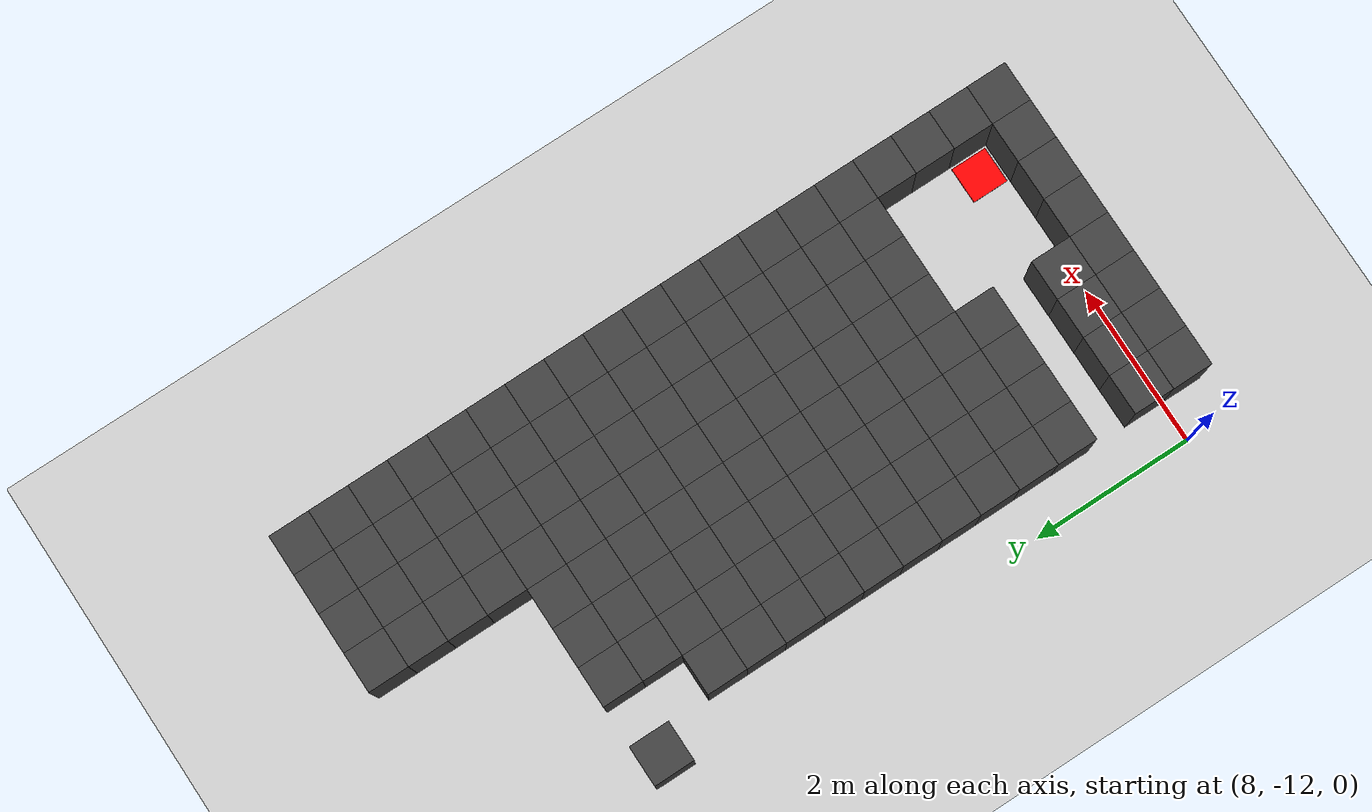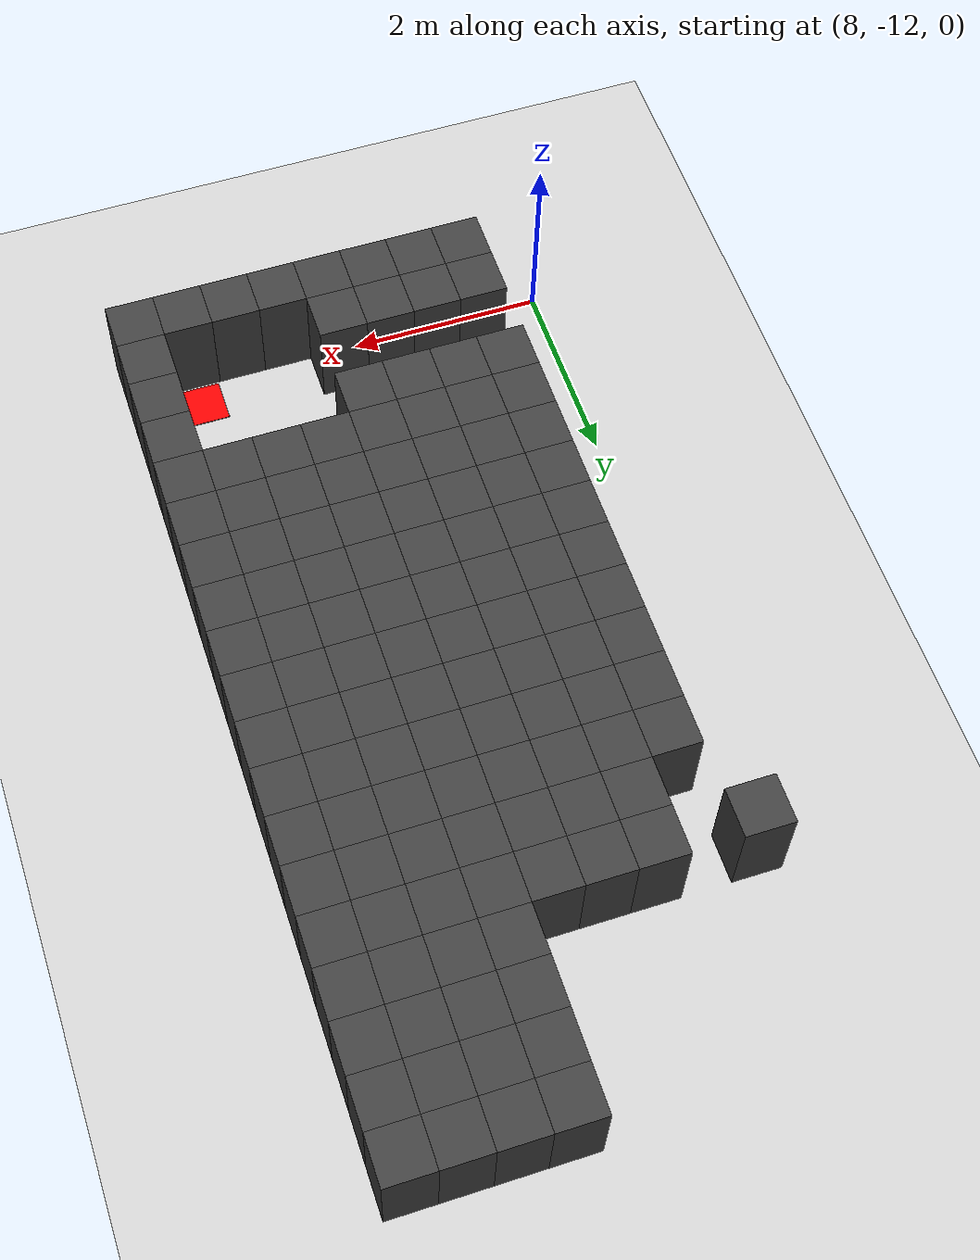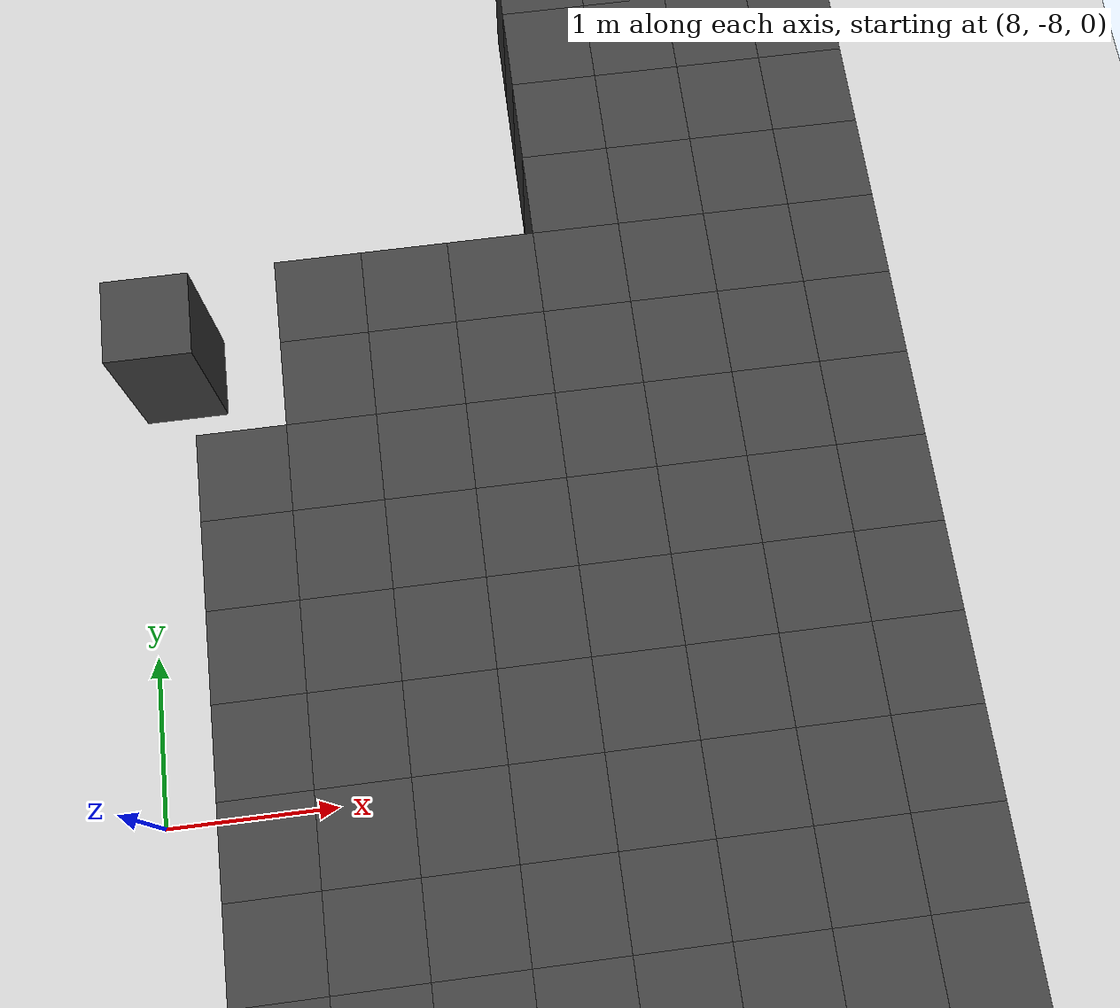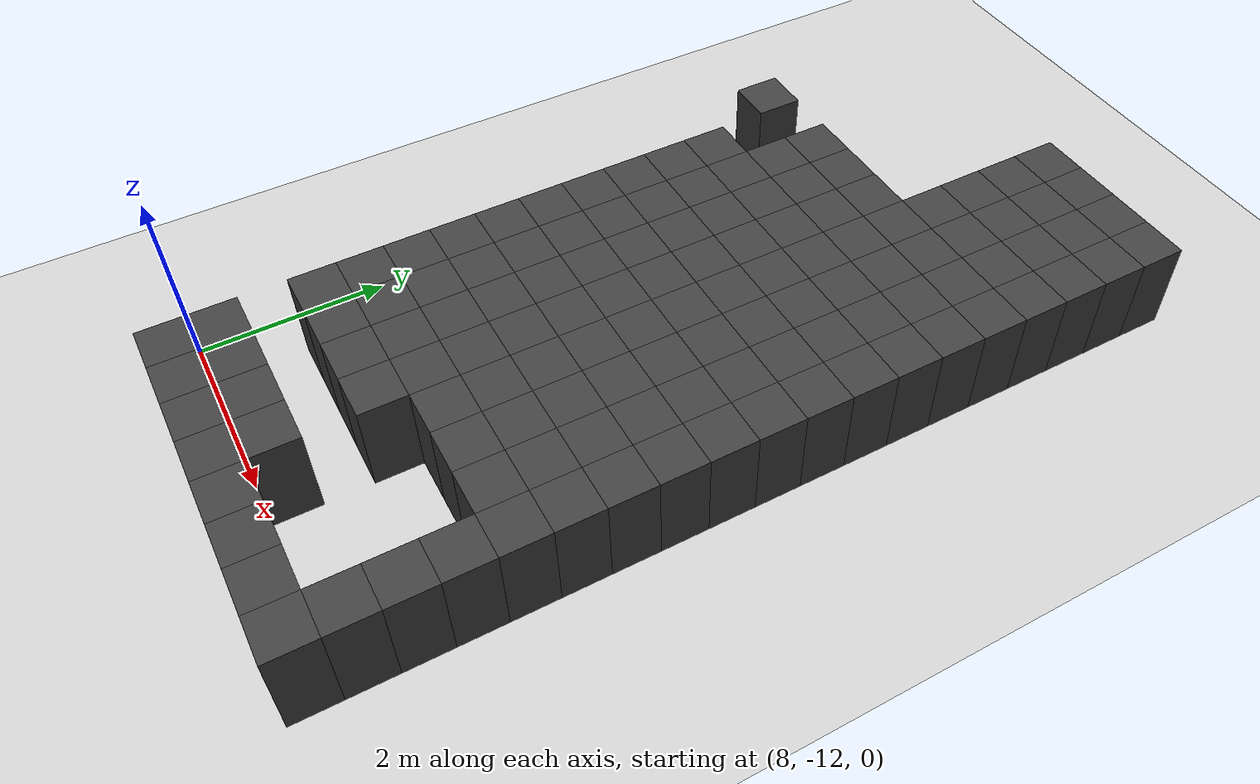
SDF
<sdf version="1.7">
 <world name="map_13994">
  <model name="ground_plane">
   <static>true</static>
   <link name="link">
    <collision name="collision">
     <geometry><plane><normal>0 0 1</normal><size>200 200</size></plane></geometry>
    </collision>
    <visual name="visual">
     <geometry><plane><normal>0 0 1</normal><size>200 200</size></plane></geometry>
     <material><ambient>0.8 0.8 0.8 1</ambient><diffuse>0.8 0.8 0.8 1</diffuse></material>
    </visual>
   </link>
  </model>
  <model name="maze_environment">
   <static>true</static>
   <link name="wall_1053">
    <pose>10.750 -3.250 0.500 0 0 0</pose>
    <collision name="col"><geometry><box><size>0.5 0.5 1.0</size></box></geometry></collision>
    <visual name="vis">
     <geometry><box><size>0.5 0.5 1.0</size></box></geometry>
     <material><ambient>0.15 0.15 0.15 1</ambient><diffuse>0.25 0.25 0.25 1</diffuse></material>
    </visual>
   </link>
   <link name="wall_1054">
    <pose>11.250 -3.250 0.500 0 0 0</pose>
    <collision name="col"><geometry><box><size>0.5 0.5 1.0</size></box></geometry></collision>
    <visual name="vis">
     <geometry><box><size>0.5 0.5 1.0</size></box></geometry>
     <material><ambient>0.15 0.15 0.15 1</ambient><diffuse>0.25 0.25 0.25 1</diffuse></material>
    </visual>
   </link>
   <link name="wall_1055">
    <pose>11.750 -3.250 0.500 0 0 0</pose>
    <collision name="col"><geometry><box><size>0.5 0.5 1.0</size></box></geometry></collision>
    <visual name="vis">
     <geometry><box><size>0.5 0.5 1.0</size></box></geometry>
     <material><ambient>0.15 0.15 0.15 1</ambient><diffuse>0.25 0.25 0.25 1</diffuse></material>
    </visual>
   </link>
   <link name="wall_1056">
    <pose>12.250 -3.250 0.500 0 0 0</pose>
    <collision name="col"><geometry><box><size>0.5 0.5 1.0</size></box></geometry></collision>
    <visual name="vis">
     <geometry><box><size>0.5 0.5 1.0</size></box></geometry>
     <material><ambient>0.15 0.15 0.15 1</ambient><diffuse>0.25 0.25 0.25 1</diffuse></material>
    </visual>
   </link>
   <link name="wall_1088">
    <pose>10.750 -3.750 0.500 0 0 0</pose>
    <collision name="col"><geometry><box><size>0.5 0.5 1.0</size></box></geometry></collision>
    <visual name="vis">
     <geometry><box><size>0.5 0.5 1.0</size></box></geometry>
     <material><ambient>0.15 0.15 0.15 1</ambient><diffuse>0.25 0.25 0.25 1</diffuse></material>
    </visual>
   </link>
   <link name="wall_1089">
    <pose>11.250 -3.750 0.500 0 0 0</pose>
    <collision name="col"><geometry><box><size>0.5 0.5 1.0</size></box></geometry></collision>
    <visual name="vis">
     <geometry><box><size>0.5 0.5 1.0</size></box></geometry>
     <material><ambient>0.15 0.15 0.15 1</ambient><diffuse>0.25 0.25 0.25 1</diffuse></material>
    </visual>
   </link>
   <link name="wall_1090">
    <pose>11.750 -3.750 0.500 0 0 0</pose>
    <collision name="col"><geometry><box><size>0.5 0.5 1.0</size></box></geometry></collision>
    <visual name="vis">
     <geometry><box><size>0.5 0.5 1.0</size></box></geometry>
     <material><ambient>0.15 0.15 0.15 1</ambient><diffuse>0.25 0.25 0.25 1</diffuse></material>
    </visual>
   </link>
   <link name="wall_1091">
    <pose>12.250 -3.750 0.500 0 0 0</pose>
    <collision name="col"><geometry><box><size>0.5 0.5 1.0</size></box></geometry></collision>
    <visual name="vis">
     <geometry><box><size>0.5 0.5 1.0</size></box></geometry>
     <material><ambient>0.15 0.15 0.15 1</ambient><diffuse>0.25 0.25 0.25 1</diffuse></material>
    </visual>
   </link>
   <link name="wall_1123">
    <pose>10.750 -4.250 0.500 0 0 0</pose>
    <collision name="col"><geometry><box><size>0.5 0.5 1.0</size></box></geometry></collision>
    <visual name="vis">
     <geometry><box><size>0.5 0.5 1.0</size></box></geometry>
     <material><ambient>0.15 0.15 0.15 1</ambient><diffuse>0.25 0.25 0.25 1</diffuse></material>
    </visual>
   </link>
   <link name="wall_1124">
    <pose>11.250 -4.250 0.500 0 0 0</pose>
    <collision name="col"><geometry><box><size>0.5 0.5 1.0</size></box></geometry></collision>
    <visual name="vis">
     <geometry><box><size>0.5 0.5 1.0</size></box></geometry>
     <material><ambient>0.15 0.15 0.15 1</ambient><diffuse>0.25 0.25 0.25 1</diffuse></material>
    </visual>
   </link>
   <link name="wall_1125">
    <pose>11.750 -4.250 0.500 0 0 0</pose>
    <collision name="col"><geometry><box><size>0.5 0.5 1.0</size></box></geometry></collision>
    <visual name="vis">
     <geometry><box><size>0.5 0.5 1.0</size></box></geometry>
     <material><ambient>0.15 0.15 0.15 1</ambient><diffuse>0.25 0.25 0.25 1</diffuse></material>
    </visual>
   </link>
   <link name="wall_1126">
    <pose>12.250 -4.250 0.500 0 0 0</pose>
    <collision name="col"><geometry><box><size>0.5 0.5 1.0</size></box></geometry></collision>
    <visual name="vis">
     <geometry><box><size>0.5 0.5 1.0</size></box></geometry>
     <material><ambient>0.15 0.15 0.15 1</ambient><diffuse>0.25 0.25 0.25 1</diffuse></material>
    </visual>
   </link>
   <link name="wall_1153">
    <pose>10.750 -4.750 0.500 0 0 0</pose>
    <collision name="col"><geometry><box><size>0.5 0.5 1.0</size></box></geometry></collision>
    <visual name="vis">
     <geometry><box><size>0.5 0.5 1.0</size></box></geometry>
     <material><ambient>0.15 0.15 0.15 1</ambient><diffuse>0.25 0.25 0.25 1</diffuse></material>
    </visual>
   </link>
   <link name="wall_1154">
    <pose>11.250 -4.750 0.500 0 0 0</pose>
    <collision name="col"><geometry><box><size>0.5 0.5 1.0</size></box></geometry></collision>
    <visual name="vis">
     <geometry><box><size>0.5 0.5 1.0</size></box></geometry>
     <material><ambient>0.15 0.15 0.15 1</ambient><diffuse>0.25 0.25 0.25 1</diffuse></material>
    </visual>
   </link>
   <link name="wall_1155">
    <pose>11.750 -4.750 0.500 0 0 0</pose>
    <collision name="col"><geometry><box><size>0.5 0.5 1.0</size></box></geometry></collision>
    <visual name="vis">
     <geometry><box><size>0.5 0.5 1.0</size></box></geometry>
     <material><ambient>0.15 0.15 0.15 1</ambient><diffuse>0.25 0.25 0.25 1</diffuse></material>
    </visual>
   </link>
   <link name="wall_1156">
    <pose>12.250 -4.750 0.500 0 0 0</pose>
    <collision name="col"><geometry><box><size>0.5 0.5 1.0</size></box></geometry></collision>
    <visual name="vis">
     <geometry><box><size>0.5 0.5 1.0</size></box></geometry>
     <material><ambient>0.15 0.15 0.15 1</ambient><diffuse>0.25 0.25 0.25 1</diffuse></material>
    </visual>
   </link>
   <link name="wall_1184">
    <pose>8.250 -5.250 0.500 0 0 0</pose>
    <collision name="col"><geometry><box><size>0.5 0.5 1.0</size></box></geometry></collision>
    <visual name="vis">
     <geometry><box><size>0.5 0.5 1.0</size></box></geometry>
     <material><ambient>0.15 0.15 0.15 1</ambient><diffuse>0.25 0.25 0.25 1</diffuse></material>
    </visual>
   </link>
   <link name="wall_1185">
    <pose>9.250 -5.250 0.500 0 0 0</pose>
    <collision name="col"><geometry><box><size>0.5 0.5 1.0</size></box></geometry></collision>
    <visual name="vis">
     <geometry><box><size>0.5 0.5 1.0</size></box></geometry>
     <material><ambient>0.15 0.15 0.15 1</ambient><diffuse>0.25 0.25 0.25 1</diffuse></material>
    </visual>
   </link>
   <link name="wall_1186">
    <pose>9.750 -5.250 0.500 0 0 0</pose>
    <collision name="col"><geometry><box><size>0.5 0.5 1.0</size></box></geometry></collision>
    <visual name="vis">
     <geometry><box><size>0.5 0.5 1.0</size></box></geometry>
     <material><ambient>0.15 0.15 0.15 1</ambient><diffuse>0.25 0.25 0.25 1</diffuse></material>
    </visual>
   </link>
   <link name="wall_1187">
    <pose>10.250 -5.250 0.500 0 0 0</pose>
    <collision name="col"><geometry><box><size>0.5 0.5 1.0</size></box></geometry></collision>
    <visual name="vis">
     <geometry><box><size>0.5 0.5 1.0</size></box></geometry>
     <material><ambient>0.15 0.15 0.15 1</ambient><diffuse>0.25 0.25 0.25 1</diffuse></material>
    </visual>
   </link>
   <link name="wall_1188">
    <pose>10.750 -5.250 0.500 0 0 0</pose>
    <collision name="col"><geometry><box><size>0.5 0.5 1.0</size></box></geometry></collision>
    <visual name="vis">
     <geometry><box><size>0.5 0.5 1.0</size></box></geometry>
     <material><ambient>0.15 0.15 0.15 1</ambient><diffuse>0.25 0.25 0.25 1</diffuse></material>
    </visual>
   </link>
   <link name="wall_1189">
    <pose>11.250 -5.250 0.500 0 0 0</pose>
    <collision name="col"><geometry><box><size>0.5 0.5 1.0</size></box></geometry></collision>
    <visual name="vis">
     <geometry><box><size>0.5 0.5 1.0</size></box></geometry>
     <material><ambient>0.15 0.15 0.15 1</ambient><diffuse>0.25 0.25 0.25 1</diffuse></material>
    </visual>
   </link>
   <link name="wall_1190">
    <pose>11.750 -5.250 0.500 0 0 0</pose>
    <collision name="col"><geometry><box><size>0.5 0.5 1.0</size></box></geometry></collision>
    <visual name="vis">
     <geometry><box><size>0.5 0.5 1.0</size></box></geometry>
     <material><ambient>0.15 0.15 0.15 1</ambient><diffuse>0.25 0.25 0.25 1</diffuse></material>
    </visual>
   </link>
   <link name="wall_1191">
    <pose>12.250 -5.250 0.500 0 0 0</pose>
    <collision name="col"><geometry><box><size>0.5 0.5 1.0</size></box></geometry></collision>
    <visual name="vis">
     <geometry><box><size>0.5 0.5 1.0</size></box></geometry>
     <material><ambient>0.15 0.15 0.15 1</ambient><diffuse>0.25 0.25 0.25 1</diffuse></material>
    </visual>
   </link>
   <link name="wall_1218">
    <pose>9.250 -5.750 0.500 0 0 0</pose>
    <collision name="col"><geometry><box><size>0.5 0.5 1.0</size></box></geometry></collision>
    <visual name="vis">
     <geometry><box><size>0.5 0.5 1.0</size></box></geometry>
     <material><ambient>0.15 0.15 0.15 1</ambient><diffuse>0.25 0.25 0.25 1</diffuse></material>
    </visual>
   </link>
   <link name="wall_1219">
    <pose>9.750 -5.750 0.500 0 0 0</pose>
    <collision name="col"><geometry><box><size>0.5 0.5 1.0</size></box></geometry></collision>
    <visual name="vis">
     <geometry><box><size>0.5 0.5 1.0</size></box></geometry>
     <material><ambient>0.15 0.15 0.15 1</ambient><diffuse>0.25 0.25 0.25 1</diffuse></material>
    </visual>
   </link>
   <link name="wall_1220">
    <pose>10.250 -5.750 0.500 0 0 0</pose>
    <collision name="col"><geometry><box><size>0.5 0.5 1.0</size></box></geometry></collision>
    <visual name="vis">
     <geometry><box><size>0.5 0.5 1.0</size></box></geometry>
     <material><ambient>0.15 0.15 0.15 1</ambient><diffuse>0.25 0.25 0.25 1</diffuse></material>
    </visual>
   </link>
   <link name="wall_1221">
    <pose>10.750 -5.750 0.500 0 0 0</pose>
    <collision name="col"><geometry><box><size>0.5 0.5 1.0</size></box></geometry></collision>
    <visual name="vis">
     <geometry><box><size>0.5 0.5 1.0</size></box></geometry>
     <material><ambient>0.15 0.15 0.15 1</ambient><diffuse>0.25 0.25 0.25 1</diffuse></material>
    </visual>
   </link>
   <link name="wall_1222">
    <pose>11.250 -5.750 0.500 0 0 0</pose>
    <collision name="col"><geometry><box><size>0.5 0.5 1.0</size></box></geometry></collision>
    <visual name="vis">
     <geometry><box><size>0.5 0.5 1.0</size></box></geometry>
     <material><ambient>0.15 0.15 0.15 1</ambient><diffuse>0.25 0.25 0.25 1</diffuse></material>
    </visual>
   </link>
   <link name="wall_1223">
    <pose>11.750 -5.750 0.500 0 0 0</pose>
    <collision name="col"><geometry><box><size>0.5 0.5 1.0</size></box></geometry></collision>
    <visual name="vis">
     <geometry><box><size>0.5 0.5 1.0</size></box></geometry>
     <material><ambient>0.15 0.15 0.15 1</ambient><diffuse>0.25 0.25 0.25 1</diffuse></material>
    </visual>
   </link>
   <link name="wall_1224">
    <pose>12.250 -5.750 0.500 0 0 0</pose>
    <collision name="col"><geometry><box><size>0.5 0.5 1.0</size></box></geometry></collision>
    <visual name="vis">
     <geometry><box><size>0.5 0.5 1.0</size></box></geometry>
     <material><ambient>0.15 0.15 0.15 1</ambient><diffuse>0.25 0.25 0.25 1</diffuse></material>
    </visual>
   </link>
   <link name="wall_1250">
    <pose>8.750 -6.250 0.500 0 0 0</pose>
    <collision name="col"><geometry><box><size>0.5 0.5 1.0</size></box></geometry></collision>
    <visual name="vis">
     <geometry><box><size>0.5 0.5 1.0</size></box></geometry>
     <material><ambient>0.15 0.15 0.15 1</ambient><diffuse>0.25 0.25 0.25 1</diffuse></material>
    </visual>
   </link>
   <link name="wall_1251">
    <pose>9.250 -6.250 0.500 0 0 0</pose>
    <collision name="col"><geometry><box><size>0.5 0.5 1.0</size></box></geometry></collision>
    <visual name="vis">
     <geometry><box><size>0.5 0.5 1.0</size></box></geometry>
     <material><ambient>0.15 0.15 0.15 1</ambient><diffuse>0.25 0.25 0.25 1</diffuse></material>
    </visual>
   </link>
   <link name="wall_1252">
    <pose>9.750 -6.250 0.500 0 0 0</pose>
    <collision name="col"><geometry><box><size>0.5 0.5 1.0</size></box></geometry></collision>
    <visual name="vis">
     <geometry><box><size>0.5 0.5 1.0</size></box></geometry>
     <material><ambient>0.15 0.15 0.15 1</ambient><diffuse>0.25 0.25 0.25 1</diffuse></material>
    </visual>
   </link>
   <link name="wall_1253">
    <pose>10.250 -6.250 0.500 0 0 0</pose>
    <collision name="col"><geometry><box><size>0.5 0.5 1.0</size></box></geometry></collision>
    <visual name="vis">
     <geometry><box><size>0.5 0.5 1.0</size></box></geometry>
     <material><ambient>0.15 0.15 0.15 1</ambient><diffuse>0.25 0.25 0.25 1</diffuse></material>
    </visual>
   </link>
   <link name="wall_1254">
    <pose>10.750 -6.250 0.500 0 0 0</pose>
    <collision name="col"><geometry><box><size>0.5 0.5 1.0</size></box></geometry></collision>
    <visual name="vis">
     <geometry><box><size>0.5 0.5 1.0</size></box></geometry>
     <material><ambient>0.15 0.15 0.15 1</ambient><diffuse>0.25 0.25 0.25 1</diffuse></material>
    </visual>
   </link>
   <link name="wall_1255">
    <pose>11.250 -6.250 0.500 0 0 0</pose>
    <collision name="col"><geometry><box><size>0.5 0.5 1.0</size></box></geometry></collision>
    <visual name="vis">
     <geometry><box><size>0.5 0.5 1.0</size></box></geometry>
     <material><ambient>0.15 0.15 0.15 1</ambient><diffuse>0.25 0.25 0.25 1</diffuse></material>
    </visual>
   </link>
   <link name="wall_1256">
    <pose>11.750 -6.250 0.500 0 0 0</pose>
    <collision name="col"><geometry><box><size>0.5 0.5 1.0</size></box></geometry></collision>
    <visual name="vis">
     <geometry><box><size>0.5 0.5 1.0</size></box></geometry>
     <material><ambient>0.15 0.15 0.15 1</ambient><diffuse>0.25 0.25 0.25 1</diffuse></material>
    </visual>
   </link>
   <link name="wall_1257">
    <pose>12.250 -6.250 0.500 0 0 0</pose>
    <collision name="col"><geometry><box><size>0.5 0.5 1.0</size></box></geometry></collision>
    <visual name="vis">
     <geometry><box><size>0.5 0.5 1.0</size></box></geometry>
     <material><ambient>0.15 0.15 0.15 1</ambient><diffuse>0.25 0.25 0.25 1</diffuse></material>
    </visual>
   </link>
   <link name="wall_1287">
    <pose>8.750 -6.750 0.500 0 0 0</pose>
    <collision name="col"><geometry><box><size>0.5 0.5 1.0</size></box></geometry></collision>
    <visual name="vis">
     <geometry><box><size>0.5 0.5 1.0</size></box></geometry>
     <material><ambient>0.15 0.15 0.15 1</ambient><diffuse>0.25 0.25 0.25 1</diffuse></material>
    </visual>
   </link>
   <link name="wall_1288">
    <pose>9.250 -6.750 0.500 0 0 0</pose>
    <collision name="col"><geometry><box><size>0.5 0.5 1.0</size></box></geometry></collision>
    <visual name="vis">
     <geometry><box><size>0.5 0.5 1.0</size></box></geometry>
     <material><ambient>0.15 0.15 0.15 1</ambient><diffuse>0.25 0.25 0.25 1</diffuse></material>
    </visual>
   </link>
   <link name="wall_1289">
    <pose>9.750 -6.750 0.500 0 0 0</pose>
    <collision name="col"><geometry><box><size>0.5 0.5 1.0</size></box></geometry></collision>
    <visual name="vis">
     <geometry><box><size>0.5 0.5 1.0</size></box></geometry>
     <material><ambient>0.15 0.15 0.15 1</ambient><diffuse>0.25 0.25 0.25 1</diffuse></material>
    </visual>
   </link>
   <link name="wall_1290">
    <pose>10.250 -6.750 0.500 0 0 0</pose>
    <collision name="col"><geometry><box><size>0.5 0.5 1.0</size></box></geometry></collision>
    <visual name="vis">
     <geometry><box><size>0.5 0.5 1.0</size></box></geometry>
     <material><ambient>0.15 0.15 0.15 1</ambient><diffuse>0.25 0.25 0.25 1</diffuse></material>
    </visual>
   </link>
   <link name="wall_1291">
    <pose>10.750 -6.750 0.500 0 0 0</pose>
    <collision name="col"><geometry><box><size>0.5 0.5 1.0</size></box></geometry></collision>
    <visual name="vis">
     <geometry><box><size>0.5 0.5 1.0</size></box></geometry>
     <material><ambient>0.15 0.15 0.15 1</ambient><diffuse>0.25 0.25 0.25 1</diffuse></material>
    </visual>
   </link>
   <link name="wall_1292">
    <pose>11.250 -6.750 0.500 0 0 0</pose>
    <collision name="col"><geometry><box><size>0.5 0.5 1.0</size></box></geometry></collision>
    <visual name="vis">
     <geometry><box><size>0.5 0.5 1.0</size></box></geometry>
     <material><ambient>0.15 0.15 0.15 1</ambient><diffuse>0.25 0.25 0.25 1</diffuse></material>
    </visual>
   </link>
   <link name="wall_1293">
    <pose>11.750 -6.750 0.500 0 0 0</pose>
    <collision name="col"><geometry><box><size>0.5 0.5 1.0</size></box></geometry></collision>
    <visual name="vis">
     <geometry><box><size>0.5 0.5 1.0</size></box></geometry>
     <material><ambient>0.15 0.15 0.15 1</ambient><diffuse>0.25 0.25 0.25 1</diffuse></material>
    </visual>
   </link>
   <link name="wall_1294">
    <pose>12.250 -6.750 0.500 0 0 0</pose>
    <collision name="col"><geometry><box><size>0.5 0.5 1.0</size></box></geometry></collision>
    <visual name="vis">
     <geometry><box><size>0.5 0.5 1.0</size></box></geometry>
     <material><ambient>0.15 0.15 0.15 1</ambient><diffuse>0.25 0.25 0.25 1</diffuse></material>
    </visual>
   </link>
   <link name="wall_1324">
    <pose>8.750 -7.250 0.500 0 0 0</pose>
    <collision name="col"><geometry><box><size>0.5 0.5 1.0</size></box></geometry></collision>
    <visual name="vis">
     <geometry><box><size>0.5 0.5 1.0</size></box></geometry>
     <material><ambient>0.15 0.15 0.15 1</ambient><diffuse>0.25 0.25 0.25 1</diffuse></material>
    </visual>
   </link>
   <link name="wall_1325">
    <pose>9.250 -7.250 0.500 0 0 0</pose>
    <collision name="col"><geometry><box><size>0.5 0.5 1.0</size></box></geometry></collision>
    <visual name="vis">
     <geometry><box><size>0.5 0.5 1.0</size></box></geometry>
     <material><ambient>0.15 0.15 0.15 1</ambient><diffuse>0.25 0.25 0.25 1</diffuse></material>
    </visual>
   </link>
   <link name="wall_1326">
    <pose>9.750 -7.250 0.500 0 0 0</pose>
    <collision name="col"><geometry><box><size>0.5 0.5 1.0</size></box></geometry></collision>
    <visual name="vis">
     <geometry><box><size>0.5 0.5 1.0</size></box></geometry>
     <material><ambient>0.15 0.15 0.15 1</ambient><diffuse>0.25 0.25 0.25 1</diffuse></material>
    </visual>
   </link>
   <link name="wall_1327">
    <pose>10.250 -7.250 0.500 0 0 0</pose>
    <collision name="col"><geometry><box><size>0.5 0.5 1.0</size></box></geometry></collision>
    <visual name="vis">
     <geometry><box><size>0.5 0.5 1.0</size></box></geometry>
     <material><ambient>0.15 0.15 0.15 1</ambient><diffuse>0.25 0.25 0.25 1</diffuse></material>
    </visual>
   </link>
   <link name="wall_1328">
    <pose>10.750 -7.250 0.500 0 0 0</pose>
    <collision name="col"><geometry><box><size>0.5 0.5 1.0</size></box></geometry></collision>
    <visual name="vis">
     <geometry><box><size>0.5 0.5 1.0</size></box></geometry>
     <material><ambient>0.15 0.15 0.15 1</ambient><diffuse>0.25 0.25 0.25 1</diffuse></material>
    </visual>
   </link>
   <link name="wall_1329">
    <pose>11.250 -7.250 0.500 0 0 0</pose>
    <collision name="col"><geometry><box><size>0.5 0.5 1.0</size></box></geometry></collision>
    <visual name="vis">
     <geometry><box><size>0.5 0.5 1.0</size></box></geometry>
     <material><ambient>0.15 0.15 0.15 1</ambient><diffuse>0.25 0.25 0.25 1</diffuse></material>
    </visual>
   </link>
   <link name="wall_1330">
    <pose>11.750 -7.250 0.500 0 0 0</pose>
    <collision name="col"><geometry><box><size>0.5 0.5 1.0</size></box></geometry></collision>
    <visual name="vis">
     <geometry><box><size>0.5 0.5 1.0</size></box></geometry>
     <material><ambient>0.15 0.15 0.15 1</ambient><diffuse>0.25 0.25 0.25 1</diffuse></material>
    </visual>
   </link>
   <link name="wall_1331">
    <pose>12.250 -7.250 0.500 0 0 0</pose>
    <collision name="col"><geometry><box><size>0.5 0.5 1.0</size></box></geometry></collision>
    <visual name="vis">
     <geometry><box><size>0.5 0.5 1.0</size></box></geometry>
     <material><ambient>0.15 0.15 0.15 1</ambient><diffuse>0.25 0.25 0.25 1</diffuse></material>
    </visual>
   </link>
   <link name="wall_1363">
    <pose>8.750 -7.750 0.500 0 0 0</pose>
    <collision name="col"><geometry><box><size>0.5 0.5 1.0</size></box></geometry></collision>
    <visual name="vis">
     <geometry><box><size>0.5 0.5 1.0</size></box></geometry>
     <material><ambient>0.15 0.15 0.15 1</ambient><diffuse>0.25 0.25 0.25 1</diffuse></material>
    </visual>
   </link>
   <link name="wall_1364">
    <pose>9.250 -7.750 0.500 0 0 0</pose>
    <collision name="col"><geometry><box><size>0.5 0.5 1.0</size></box></geometry></collision>
    <visual name="vis">
     <geometry><box><size>0.5 0.5 1.0</size></box></geometry>
     <material><ambient>0.15 0.15 0.15 1</ambient><diffuse>0.25 0.25 0.25 1</diffuse></material>
    </visual>
   </link>
   <link name="wall_1365">
    <pose>9.750 -7.750 0.500 0 0 0</pose>
    <collision name="col"><geometry><box><size>0.5 0.5 1.0</size></box></geometry></collision>
    <visual name="vis">
     <geometry><box><size>0.5 0.5 1.0</size></box></geometry>
     <material><ambient>0.15 0.15 0.15 1</ambient><diffuse>0.25 0.25 0.25 1</diffuse></material>
    </visual>
   </link>
   <link name="wall_1366">
    <pose>10.250 -7.750 0.500 0 0 0</pose>
    <collision name="col"><geometry><box><size>0.5 0.5 1.0</size></box></geometry></collision>
    <visual name="vis">
     <geometry><box><size>0.5 0.5 1.0</size></box></geometry>
     <material><ambient>0.15 0.15 0.15 1</ambient><diffuse>0.25 0.25 0.25 1</diffuse></material>
    </visual>
   </link>
   <link name="wall_1367">
    <pose>10.750 -7.750 0.500 0 0 0</pose>
    <collision name="col"><geometry><box><size>0.5 0.5 1.0</size></box></geometry></collision>
    <visual name="vis">
     <geometry><box><size>0.5 0.5 1.0</size></box></geometry>
     <material><ambient>0.15 0.15 0.15 1</ambient><diffuse>0.25 0.25 0.25 1</diffuse></material>
    </visual>
   </link>
   <link name="wall_1368">
    <pose>11.250 -7.750 0.500 0 0 0</pose>
    <collision name="col"><geometry><box><size>0.5 0.5 1.0</size></box></geometry></collision>
    <visual name="vis">
     <geometry><box><size>0.5 0.5 1.0</size></box></geometry>
     <material><ambient>0.15 0.15 0.15 1</ambient><diffuse>0.25 0.25 0.25 1</diffuse></material>
    </visual>
   </link>
   <link name="wall_1369">
    <pose>11.750 -7.750 0.500 0 0 0</pose>
    <collision name="col"><geometry><box><size>0.5 0.5 1.0</size></box></geometry></collision>
    <visual name="vis">
     <geometry><box><size>0.5 0.5 1.0</size></box></geometry>
     <material><ambient>0.15 0.15 0.15 1</ambient><diffuse>0.25 0.25 0.25 1</diffuse></material>
    </visual>
   </link>
   <link name="wall_1370">
    <pose>12.250 -7.750 0.500 0 0 0</pose>
    <collision name="col"><geometry><box><size>0.5 0.5 1.0</size></box></geometry></collision>
    <visual name="vis">
     <geometry><box><size>0.5 0.5 1.0</size></box></geometry>
     <material><ambient>0.15 0.15 0.15 1</ambient><diffuse>0.25 0.25 0.25 1</diffuse></material>
    </visual>
   </link>
   <link name="wall_1406">
    <pose>8.750 -8.250 0.500 0 0 0</pose>
    <collision name="col"><geometry><box><size>0.5 0.5 1.0</size></box></geometry></collision>
    <visual name="vis">
     <geometry><box><size>0.5 0.5 1.0</size></box></geometry>
     <material><ambient>0.15 0.15 0.15 1</ambient><diffuse>0.25 0.25 0.25 1</diffuse></material>
    </visual>
   </link>
   <link name="wall_1407">
    <pose>9.250 -8.250 0.500 0 0 0</pose>
    <collision name="col"><geometry><box><size>0.5 0.5 1.0</size></box></geometry></collision>
    <visual name="vis">
     <geometry><box><size>0.5 0.5 1.0</size></box></geometry>
     <material><ambient>0.15 0.15 0.15 1</ambient><diffuse>0.25 0.25 0.25 1</diffuse></material>
    </visual>
   </link>
   <link name="wall_1408">
    <pose>9.750 -8.250 0.500 0 0 0</pose>
    <collision name="col"><geometry><box><size>0.5 0.5 1.0</size></box></geometry></collision>
    <visual name="vis">
     <geometry><box><size>0.5 0.5 1.0</size></box></geometry>
     <material><ambient>0.15 0.15 0.15 1</ambient><diffuse>0.25 0.25 0.25 1</diffuse></material>
    </visual>
   </link>
   <link name="wall_1409">
    <pose>10.250 -8.250 0.500 0 0 0</pose>
    <collision name="col"><geometry><box><size>0.5 0.5 1.0</size></box></geometry></collision>
    <visual name="vis">
     <geometry><box><size>0.5 0.5 1.0</size></box></geometry>
     <material><ambient>0.15 0.15 0.15 1</ambient><diffuse>0.25 0.25 0.25 1</diffuse></material>
    </visual>
   </link>
   <link name="wall_1410">
    <pose>10.750 -8.250 0.500 0 0 0</pose>
    <collision name="col"><geometry><box><size>0.5 0.5 1.0</size></box></geometry></collision>
    <visual name="vis">
     <geometry><box><size>0.5 0.5 1.0</size></box></geometry>
     <material><ambient>0.15 0.15 0.15 1</ambient><diffuse>0.25 0.25 0.25 1</diffuse></material>
    </visual>
   </link>
   <link name="wall_1411">
    <pose>11.250 -8.250 0.500 0 0 0</pose>
    <collision name="col"><geometry><box><size>0.5 0.5 1.0</size></box></geometry></collision>
    <visual name="vis">
     <geometry><box><size>0.5 0.5 1.0</size></box></geometry>
     <material><ambient>0.15 0.15 0.15 1</ambient><diffuse>0.25 0.25 0.25 1</diffuse></material>
    </visual>
   </link>
   <link name="wall_1412">
    <pose>11.750 -8.250 0.500 0 0 0</pose>
    <collision name="col"><geometry><box><size>0.5 0.5 1.0</size></box></geometry></collision>
    <visual name="vis">
     <geometry><box><size>0.5 0.5 1.0</size></box></geometry>
     <material><ambient>0.15 0.15 0.15 1</ambient><diffuse>0.25 0.25 0.25 1</diffuse></material>
    </visual>
   </link>
   <link name="wall_1413">
    <pose>12.250 -8.250 0.500 0 0 0</pose>
    <collision name="col"><geometry><box><size>0.5 0.5 1.0</size></box></geometry></collision>
    <visual name="vis">
     <geometry><box><size>0.5 0.5 1.0</size></box></geometry>
     <material><ambient>0.15 0.15 0.15 1</ambient><diffuse>0.25 0.25 0.25 1</diffuse></material>
    </visual>
   </link>
   <link name="wall_1449">
    <pose>8.750 -8.750 0.500 0 0 0</pose>
    <collision name="col"><geometry><box><size>0.5 0.5 1.0</size></box></geometry></collision>
    <visual name="vis">
     <geometry><box><size>0.5 0.5 1.0</size></box></geometry>
     <material><ambient>0.15 0.15 0.15 1</ambient><diffuse>0.25 0.25 0.25 1</diffuse></material>
    </visual>
   </link>
   <link name="wall_1450">
    <pose>9.250 -8.750 0.500 0 0 0</pose>
    <collision name="col"><geometry><box><size>0.5 0.5 1.0</size></box></geometry></collision>
    <visual name="vis">
     <geometry><box><size>0.5 0.5 1.0</size></box></geometry>
     <material><ambient>0.15 0.15 0.15 1</ambient><diffuse>0.25 0.25 0.25 1</diffuse></material>
    </visual>
   </link>
   <link name="wall_1451">
    <pose>9.750 -8.750 0.500 0 0 0</pose>
    <collision name="col"><geometry><box><size>0.5 0.5 1.0</size></box></geometry></collision>
    <visual name="vis">
     <geometry><box><size>0.5 0.5 1.0</size></box></geometry>
     <material><ambient>0.15 0.15 0.15 1</ambient><diffuse>0.25 0.25 0.25 1</diffuse></material>
    </visual>
   </link>
   <link name="wall_1452">
    <pose>10.250 -8.750 0.500 0 0 0</pose>
    <collision name="col"><geometry><box><size>0.5 0.5 1.0</size></box></geometry></collision>
    <visual name="vis">
     <geometry><box><size>0.5 0.5 1.0</size></box></geometry>
     <material><ambient>0.15 0.15 0.15 1</ambient><diffuse>0.25 0.25 0.25 1</diffuse></material>
    </visual>
   </link>
   <link name="wall_1453">
    <pose>10.750 -8.750 0.500 0 0 0</pose>
    <collision name="col"><geometry><box><size>0.5 0.5 1.0</size></box></geometry></collision>
    <visual name="vis">
     <geometry><box><size>0.5 0.5 1.0</size></box></geometry>
     <material><ambient>0.15 0.15 0.15 1</ambient><diffuse>0.25 0.25 0.25 1</diffuse></material>
    </visual>
   </link>
   <link name="wall_1454">
    <pose>11.250 -8.750 0.500 0 0 0</pose>
    <collision name="col"><geometry><box><size>0.5 0.5 1.0</size></box></geometry></collision>
    <visual name="vis">
     <geometry><box><size>0.5 0.5 1.0</size></box></geometry>
     <material><ambient>0.15 0.15 0.15 1</ambient><diffuse>0.25 0.25 0.25 1</diffuse></material>
    </visual>
   </link>
   <link name="wall_1455">
    <pose>11.750 -8.750 0.500 0 0 0</pose>
    <collision name="col"><geometry><box><size>0.5 0.5 1.0</size></box></geometry></collision>
    <visual name="vis">
     <geometry><box><size>0.5 0.5 1.0</size></box></geometry>
     <material><ambient>0.15 0.15 0.15 1</ambient><diffuse>0.25 0.25 0.25 1</diffuse></material>
    </visual>
   </link>
   <link name="wall_1456">
    <pose>12.250 -8.750 0.500 0 0 0</pose>
    <collision name="col"><geometry><box><size>0.5 0.5 1.0</size></box></geometry></collision>
    <visual name="vis">
     <geometry><box><size>0.5 0.5 1.0</size></box></geometry>
     <material><ambient>0.15 0.15 0.15 1</ambient><diffuse>0.25 0.25 0.25 1</diffuse></material>
    </visual>
   </link>
   <link name="wall_1492">
    <pose>8.750 -9.250 0.500 0 0 0</pose>
    <collision name="col"><geometry><box><size>0.5 0.5 1.0</size></box></geometry></collision>
    <visual name="vis">
     <geometry><box><size>0.5 0.5 1.0</size></box></geometry>
     <material><ambient>0.15 0.15 0.15 1</ambient><diffuse>0.25 0.25 0.25 1</diffuse></material>
    </visual>
   </link>
   <link name="wall_1493">
    <pose>9.250 -9.250 0.500 0 0 0</pose>
    <collision name="col"><geometry><box><size>0.5 0.5 1.0</size></box></geometry></collision>
    <visual name="vis">
     <geometry><box><size>0.5 0.5 1.0</size></box></geometry>
     <material><ambient>0.15 0.15 0.15 1</ambient><diffuse>0.25 0.25 0.25 1</diffuse></material>
    </visual>
   </link>
   <link name="wall_1494">
    <pose>9.750 -9.250 0.500 0 0 0</pose>
    <collision name="col"><geometry><box><size>0.5 0.5 1.0</size></box></geometry></collision>
    <visual name="vis">
     <geometry><box><size>0.5 0.5 1.0</size></box></geometry>
     <material><ambient>0.15 0.15 0.15 1</ambient><diffuse>0.25 0.25 0.25 1</diffuse></material>
    </visual>
   </link>
   <link name="wall_1495">
    <pose>10.250 -9.250 0.500 0 0 0</pose>
    <collision name="col"><geometry><box><size>0.5 0.5 1.0</size></box></geometry></collision>
    <visual name="vis">
     <geometry><box><size>0.5 0.5 1.0</size></box></geometry>
     <material><ambient>0.15 0.15 0.15 1</ambient><diffuse>0.25 0.25 0.25 1</diffuse></material>
    </visual>
   </link>
   <link name="wall_1496">
    <pose>10.750 -9.250 0.500 0 0 0</pose>
    <collision name="col"><geometry><box><size>0.5 0.5 1.0</size></box></geometry></collision>
    <visual name="vis">
     <geometry><box><size>0.5 0.5 1.0</size></box></geometry>
     <material><ambient>0.15 0.15 0.15 1</ambient><diffuse>0.25 0.25 0.25 1</diffuse></material>
    </visual>
   </link>
   <link name="wall_1497">
    <pose>11.250 -9.250 0.500 0 0 0</pose>
    <collision name="col"><geometry><box><size>0.5 0.5 1.0</size></box></geometry></collision>
    <visual name="vis">
     <geometry><box><size>0.5 0.5 1.0</size></box></geometry>
     <material><ambient>0.15 0.15 0.15 1</ambient><diffuse>0.25 0.25 0.25 1</diffuse></material>
    </visual>
   </link>
   <link name="wall_1498">
    <pose>11.750 -9.250 0.500 0 0 0</pose>
    <collision name="col"><geometry><box><size>0.5 0.5 1.0</size></box></geometry></collision>
    <visual name="vis">
     <geometry><box><size>0.5 0.5 1.0</size></box></geometry>
     <material><ambient>0.15 0.15 0.15 1</ambient><diffuse>0.25 0.25 0.25 1</diffuse></material>
    </visual>
   </link>
   <link name="wall_1499">
    <pose>12.250 -9.250 0.500 0 0 0</pose>
    <collision name="col"><geometry><box><size>0.5 0.5 1.0</size></box></geometry></collision>
    <visual name="vis">
     <geometry><box><size>0.5 0.5 1.0</size></box></geometry>
     <material><ambient>0.15 0.15 0.15 1</ambient><diffuse>0.25 0.25 0.25 1</diffuse></material>
    </visual>
   </link>
   <link name="wall_1528">
    <pose>8.750 -9.750 0.500 0 0 0</pose>
    <collision name="col"><geometry><box><size>0.5 0.5 1.0</size></box></geometry></collision>
    <visual name="vis">
     <geometry><box><size>0.5 0.5 1.0</size></box></geometry>
     <material><ambient>0.15 0.15 0.15 1</ambient><diffuse>0.25 0.25 0.25 1</diffuse></material>
    </visual>
   </link>
   <link name="wall_1529">
    <pose>9.250 -9.750 0.500 0 0 0</pose>
    <collision name="col"><geometry><box><size>0.5 0.5 1.0</size></box></geometry></collision>
    <visual name="vis">
     <geometry><box><size>0.5 0.5 1.0</size></box></geometry>
     <material><ambient>0.15 0.15 0.15 1</ambient><diffuse>0.25 0.25 0.25 1</diffuse></material>
    </visual>
   </link>
   <link name="wall_1530">
    <pose>9.750 -9.750 0.500 0 0 0</pose>
    <collision name="col"><geometry><box><size>0.5 0.5 1.0</size></box></geometry></collision>
    <visual name="vis">
     <geometry><box><size>0.5 0.5 1.0</size></box></geometry>
     <material><ambient>0.15 0.15 0.15 1</ambient><diffuse>0.25 0.25 0.25 1</diffuse></material>
    </visual>
   </link>
   <link name="wall_1531">
    <pose>10.250 -9.750 0.500 0 0 0</pose>
    <collision name="col"><geometry><box><size>0.5 0.5 1.0</size></box></geometry></collision>
    <visual name="vis">
     <geometry><box><size>0.5 0.5 1.0</size></box></geometry>
     <material><ambient>0.15 0.15 0.15 1</ambient><diffuse>0.25 0.25 0.25 1</diffuse></material>
    </visual>
   </link>
   <link name="wall_1532">
    <pose>10.750 -9.750 0.500 0 0 0</pose>
    <collision name="col"><geometry><box><size>0.5 0.5 1.0</size></box></geometry></collision>
    <visual name="vis">
     <geometry><box><size>0.5 0.5 1.0</size></box></geometry>
     <material><ambient>0.15 0.15 0.15 1</ambient><diffuse>0.25 0.25 0.25 1</diffuse></material>
    </visual>
   </link>
   <link name="wall_1533">
    <pose>11.250 -9.750 0.500 0 0 0</pose>
    <collision name="col"><geometry><box><size>0.5 0.5 1.0</size></box></geometry></collision>
    <visual name="vis">
     <geometry><box><size>0.5 0.5 1.0</size></box></geometry>
     <material><ambient>0.15 0.15 0.15 1</ambient><diffuse>0.25 0.25 0.25 1</diffuse></material>
    </visual>
   </link>
   <link name="wall_1534">
    <pose>11.750 -9.750 0.500 0 0 0</pose>
    <collision name="col"><geometry><box><size>0.5 0.5 1.0</size></box></geometry></collision>
    <visual name="vis">
     <geometry><box><size>0.5 0.5 1.0</size></box></geometry>
     <material><ambient>0.15 0.15 0.15 1</ambient><diffuse>0.25 0.25 0.25 1</diffuse></material>
    </visual>
   </link>
   <link name="wall_1535">
    <pose>12.250 -9.750 0.500 0 0 0</pose>
    <collision name="col"><geometry><box><size>0.5 0.5 1.0</size></box></geometry></collision>
    <visual name="vis">
     <geometry><box><size>0.5 0.5 1.0</size></box></geometry>
     <material><ambient>0.15 0.15 0.15 1</ambient><diffuse>0.25 0.25 0.25 1</diffuse></material>
    </visual>
   </link>
   <link name="wall_1564">
    <pose>8.750 -10.250 0.500 0 0 0</pose>
    <collision name="col"><geometry><box><size>0.5 0.5 1.0</size></box></geometry></collision>
    <visual name="vis">
     <geometry><box><size>0.5 0.5 1.0</size></box></geometry>
     <material><ambient>0.15 0.15 0.15 1</ambient><diffuse>0.25 0.25 0.25 1</diffuse></material>
    </visual>
   </link>
   <link name="wall_1565">
    <pose>9.250 -10.250 0.500 0 0 0</pose>
    <collision name="col"><geometry><box><size>0.5 0.5 1.0</size></box></geometry></collision>
    <visual name="vis">
     <geometry><box><size>0.5 0.5 1.0</size></box></geometry>
     <material><ambient>0.15 0.15 0.15 1</ambient><diffuse>0.25 0.25 0.25 1</diffuse></material>
    </visual>
   </link>
   <link name="wall_1566">
    <pose>9.750 -10.250 0.500 0 0 0</pose>
    <collision name="col"><geometry><box><size>0.5 0.5 1.0</size></box></geometry></collision>
    <visual name="vis">
     <geometry><box><size>0.5 0.5 1.0</size></box></geometry>
     <material><ambient>0.15 0.15 0.15 1</ambient><diffuse>0.25 0.25 0.25 1</diffuse></material>
    </visual>
   </link>
   <link name="wall_1567">
    <pose>10.250 -10.250 0.500 0 0 0</pose>
    <collision name="col"><geometry><box><size>0.5 0.5 1.0</size></box></geometry></collision>
    <visual name="vis">
     <geometry><box><size>0.5 0.5 1.0</size></box></geometry>
     <material><ambient>0.15 0.15 0.15 1</ambient><diffuse>0.25 0.25 0.25 1</diffuse></material>
    </visual>
   </link>
   <link name="wall_1568">
    <pose>10.750 -10.250 0.500 0 0 0</pose>
    <collision name="col"><geometry><box><size>0.5 0.5 1.0</size></box></geometry></collision>
    <visual name="vis">
     <geometry><box><size>0.5 0.5 1.0</size></box></geometry>
     <material><ambient>0.15 0.15 0.15 1</ambient><diffuse>0.25 0.25 0.25 1</diffuse></material>
    </visual>
   </link>
   <link name="wall_1569">
    <pose>11.250 -10.250 0.500 0 0 0</pose>
    <collision name="col"><geometry><box><size>0.5 0.5 1.0</size></box></geometry></collision>
    <visual name="vis">
     <geometry><box><size>0.5 0.5 1.0</size></box></geometry>
     <material><ambient>0.15 0.15 0.15 1</ambient><diffuse>0.25 0.25 0.25 1</diffuse></material>
    </visual>
   </link>
   <link name="wall_1570">
    <pose>11.750 -10.250 0.500 0 0 0</pose>
    <collision name="col"><geometry><box><size>0.5 0.5 1.0</size></box></geometry></collision>
    <visual name="vis">
     <geometry><box><size>0.5 0.5 1.0</size></box></geometry>
     <material><ambient>0.15 0.15 0.15 1</ambient><diffuse>0.25 0.25 0.25 1</diffuse></material>
    </visual>
   </link>
   <link name="wall_1571">
    <pose>12.250 -10.250 0.500 0 0 0</pose>
    <collision name="col"><geometry><box><size>0.5 0.5 1.0</size></box></geometry></collision>
    <visual name="vis">
     <geometry><box><size>0.5 0.5 1.0</size></box></geometry>
     <material><ambient>0.15 0.15 0.15 1</ambient><diffuse>0.25 0.25 0.25 1</diffuse></material>
    </visual>
   </link>
   <link name="wall_1605">
    <pose>8.750 -10.750 0.500 0 0 0</pose>
    <collision name="col"><geometry><box><size>0.5 0.5 1.0</size></box></geometry></collision>
    <visual name="vis">
     <geometry><box><size>0.5 0.5 1.0</size></box></geometry>
     <material><ambient>0.15 0.15 0.15 1</ambient><diffuse>0.25 0.25 0.25 1</diffuse></material>
    </visual>
   </link>
   <link name="wall_1606">
    <pose>9.250 -10.750 0.500 0 0 0</pose>
    <collision name="col"><geometry><box><size>0.5 0.5 1.0</size></box></geometry></collision>
    <visual name="vis">
     <geometry><box><size>0.5 0.5 1.0</size></box></geometry>
     <material><ambient>0.15 0.15 0.15 1</ambient><diffuse>0.25 0.25 0.25 1</diffuse></material>
    </visual>
   </link>
   <link name="wall_1607">
    <pose>9.750 -10.750 0.500 0 0 0</pose>
    <collision name="col"><geometry><box><size>0.5 0.5 1.0</size></box></geometry></collision>
    <visual name="vis">
     <geometry><box><size>0.5 0.5 1.0</size></box></geometry>
     <material><ambient>0.15 0.15 0.15 1</ambient><diffuse>0.25 0.25 0.25 1</diffuse></material>
    </visual>
   </link>
   <link name="wall_1608">
    <pose>10.250 -10.750 0.500 0 0 0</pose>
    <collision name="col"><geometry><box><size>0.5 0.5 1.0</size></box></geometry></collision>
    <visual name="vis">
     <geometry><box><size>0.5 0.5 1.0</size></box></geometry>
     <material><ambient>0.15 0.15 0.15 1</ambient><diffuse>0.25 0.25 0.25 1</diffuse></material>
    </visual>
   </link>
   <link name="wall_1609">
    <pose>12.250 -10.750 0.500 0 0 0</pose>
    <collision name="col"><geometry><box><size>0.5 0.5 1.0</size></box></geometry></collision>
    <visual name="vis">
     <geometry><box><size>0.5 0.5 1.0</size></box></geometry>
     <material><ambient>0.15 0.15 0.15 1</ambient><diffuse>0.25 0.25 0.25 1</diffuse></material>
    </visual>
   </link>
   <link name="wall_1636">
    <pose>12.250 -11.250 0.500 0 0 0</pose>
    <collision name="col"><geometry><box><size>0.5 0.5 1.0</size></box></geometry></collision>
    <visual name="vis">
     <geometry><box><size>0.5 0.5 1.0</size></box></geometry>
     <material><ambient>0.15 0.15 0.15 1</ambient><diffuse>0.25 0.25 0.25 1</diffuse></material>
    </visual>
   </link>
   <link name="wall_1679">
    <pose>8.750 -11.750 0.500 0 0 0</pose>
    <collision name="col"><geometry><box><size>0.5 0.5 1.0</size></box></geometry></collision>
    <visual name="vis">
     <geometry><box><size>0.5 0.5 1.0</size></box></geometry>
     <material><ambient>0.15 0.15 0.15 1</ambient><diffuse>0.25 0.25 0.25 1</diffuse></material>
    </visual>
   </link>
   <link name="wall_1680">
    <pose>9.250 -11.750 0.500 0 0 0</pose>
    <collision name="col"><geometry><box><size>0.5 0.5 1.0</size></box></geometry></collision>
    <visual name="vis">
     <geometry><box><size>0.5 0.5 1.0</size></box></geometry>
     <material><ambient>0.15 0.15 0.15 1</ambient><diffuse>0.25 0.25 0.25 1</diffuse></material>
    </visual>
   </link>
   <link name="wall_1681">
    <pose>9.750 -11.750 0.500 0 0 0</pose>
    <collision name="col"><geometry><box><size>0.5 0.5 1.0</size></box></geometry></collision>
    <visual name="vis">
     <geometry><box><size>0.5 0.5 1.0</size></box></geometry>
     <material><ambient>0.15 0.15 0.15 1</ambient><diffuse>0.25 0.25 0.25 1</diffuse></material>
    </visual>
   </link>
   <link name="wall_1682">
    <pose>10.250 -11.750 0.500 0 0 0</pose>
    <collision name="col"><geometry><box><size>0.5 0.5 1.0</size></box></geometry></collision>
    <visual name="vis">
     <geometry><box><size>0.5 0.5 1.0</size></box></geometry>
     <material><ambient>0.15 0.15 0.15 1</ambient><diffuse>0.25 0.25 0.25 1</diffuse></material>
    </visual>
   </link>
   <link name="wall_1683">
    <pose>12.250 -11.750 0.500 0 0 0</pose>
    <collision name="col"><geometry><box><size>0.5 0.5 1.0</size></box></geometry></collision>
    <visual name="vis">
     <geometry><box><size>0.5 0.5 1.0</size></box></geometry>
     <material><ambient>0.15 0.15 0.15 1</ambient><diffuse>0.25 0.25 0.25 1</diffuse></material>
    </visual>
   </link>
   <link name="wall_1726">
    <pose>8.750 -12.250 0.500 0 0 0</pose>
    <collision name="col"><geometry><box><size>0.5 0.5 1.0</size></box></geometry></collision>
    <visual name="vis">
     <geometry><box><size>0.5 0.5 1.0</size></box></geometry>
     <material><ambient>0.15 0.15 0.15 1</ambient><diffuse>0.25 0.25 0.25 1</diffuse></material>
    </visual>
   </link>
   <link name="wall_1727">
    <pose>9.250 -12.250 0.500 0 0 0</pose>
    <collision name="col"><geometry><box><size>0.5 0.5 1.0</size></box></geometry></collision>
    <visual name="vis">
     <geometry><box><size>0.5 0.5 1.0</size></box></geometry>
     <material><ambient>0.15 0.15 0.15 1</ambient><diffuse>0.25 0.25 0.25 1</diffuse></material>
    </visual>
   </link>
   <link name="wall_1728">
    <pose>9.750 -12.250 0.500 0 0 0</pose>
    <collision name="col"><geometry><box><size>0.5 0.5 1.0</size></box></geometry></collision>
    <visual name="vis">
     <geometry><box><size>0.5 0.5 1.0</size></box></geometry>
     <material><ambient>0.15 0.15 0.15 1</ambient><diffuse>0.25 0.25 0.25 1</diffuse></material>
    </visual>
   </link>
   <link name="wall_1729">
    <pose>10.250 -12.250 0.500 0 0 0</pose>
    <collision name="col"><geometry><box><size>0.5 0.5 1.0</size></box></geometry></collision>
    <visual name="vis">
     <geometry><box><size>0.5 0.5 1.0</size></box></geometry>
     <material><ambient>0.15 0.15 0.15 1</ambient><diffuse>0.25 0.25 0.25 1</diffuse></material>
    </visual>
   </link>
   <link name="wall_1730">
    <pose>10.750 -12.250 0.500 0 0 0</pose>
    <collision name="col"><geometry><box><size>0.5 0.5 1.0</size></box></geometry></collision>
    <visual name="vis">
     <geometry><box><size>0.5 0.5 1.0</size></box></geometry>
     <material><ambient>0.15 0.15 0.15 1</ambient><diffuse>0.25 0.25 0.25 1</diffuse></material>
    </visual>
   </link>
   <link name="wall_1731">
    <pose>11.250 -12.250 0.500 0 0 0</pose>
    <collision name="col"><geometry><box><size>0.5 0.5 1.0</size></box></geometry></collision>
    <visual name="vis">
     <geometry><box><size>0.5 0.5 1.0</size></box></geometry>
     <material><ambient>0.15 0.15 0.15 1</ambient><diffuse>0.25 0.25 0.25 1</diffuse></material>
    </visual>
   </link>
   <link name="wall_1732">
    <pose>11.750 -12.250 0.500 0 0 0</pose>
    <collision name="col"><geometry><box><size>0.5 0.5 1.0</size></box></geometry></collision>
    <visual name="vis">
     <geometry><box><size>0.5 0.5 1.0</size></box></geometry>
     <material><ambient>0.15 0.15 0.15 1</ambient><diffuse>0.25 0.25 0.25 1</diffuse></material>
    </visual>
   </link>
   <link name="wall_1733">
    <pose>12.250 -12.250 0.500 0 0 0</pose>
    <collision name="col"><geometry><box><size>0.5 0.5 1.0</size></box></geometry></collision>
    <visual name="vis">
     <geometry><box><size>0.5 0.5 1.0</size></box></geometry>
     <material><ambient>0.15 0.15 0.15 1</ambient><diffuse>0.25 0.25 0.25 1</diffuse></material>
    </visual>
   </link>
   <link name="goal_zone">
    <pose>11.750 -11.750 0.005 0 0 0</pose>
    <visual name="vis">
     <geometry><box><size>0.45 0.45 0.01</size></box></geometry>
     <material>
      <ambient>1.0 0.0 0.0 1</ambient>
      <diffuse>1.0 0.0 0.0 1</diffuse>
      <emissive>0.60 0.00 0.00 1</emissive>
     </material>
    </visual>
   </link>
  </model>
 </world>
</sdf>
